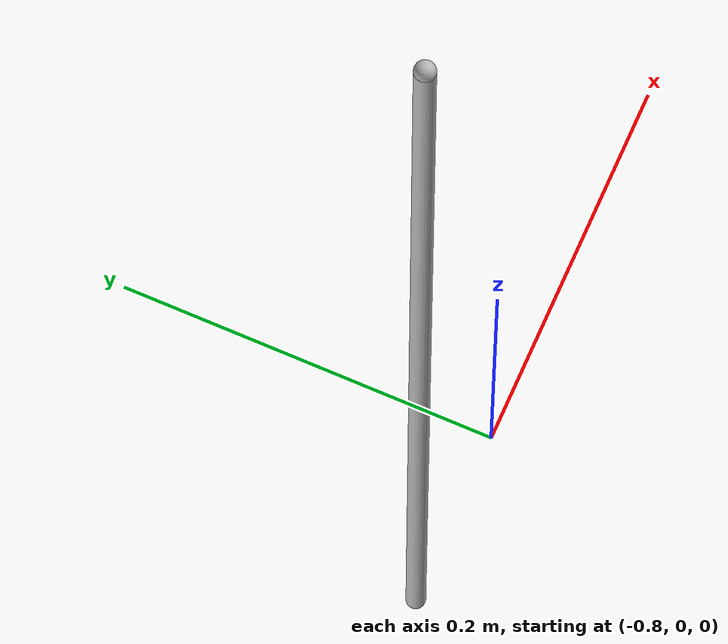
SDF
<?xml version='1.0'?>
<sdf version='1.7'>
  <model name='cable2'>
    <link name='firefly_2/aux_load_x'>
      <pose>-0.895 0 0.01 0 -0 0</pose>
      <inertial>
        <pose>0 0 0.35 0 -0 0</pose>
        <mass>0.07</mass>
        <inertia>
          <ixx>0.00449218</ixx>
          <ixy>0</ixy>
          <ixz>0</ixz>
          <iyy>0.00449218</iyy>
          <iyz>0</iyz>
          <izz>8.25e-07</izz>
        </inertia>
      </inertial>
      <self_collide>0</self_collide>
      <enable_wind>0</enable_wind>
      <kinematic>0</kinematic>
      <visual name='firefly_2/aux_load_x_visual'>
        <pose>0 0 0 0 -0 0</pose>
        <geometry>
          <sphere>
            <radius>0.005</radius>
          </sphere>
        </geometry>
        <material>
          <shader type='pixel'/>
        </material>
        <transparency>0</transparency>
        <cast_shadows>1</cast_shadows>
      </visual>
      <visual name='firefly_2/aux_load_x_fixed_joint_lump__firefly_2/cable_visual_1'>
        <pose>0 0 0.35 0 -0 0</pose>
        <geometry>
          <cylinder>
            <length>0.7</length>
            <radius>0.005</radius>
          </cylinder>
        </geometry>
        <material>
          <shader type='pixel'/>
        </material>
        <transparency>0</transparency>
        <cast_shadows>1</cast_shadows>
      </visual>
      <visual name='firefly_2/aux_load_x_fixed_joint_lump__firefly_2/aux_uav_y_visual_2'>
        <pose>0 0 0.7 0 -0 0</pose>
        <geometry>
          <sphere>
            <radius>0.005</radius>
          </sphere>
        </geometry>
        <material>
          <shader type='pixel'/>
        </material>
        <transparency>0</transparency>
        <cast_shadows>1</cast_shadows>
      </visual>
    </link>
    <link name='firefly_2/aux_load_y'>
      <pose>-0.895 0 0.01 0 -0 0</pose>
      <inertial>
        <pose>0 0 0 0 -0 0</pose>
        <mass>0.01</mass>
        <inertia>
          <ixx>1e-07</ixx>
          <ixy>0</ixy>
          <ixz>0</ixz>
          <iyy>1e-07</iyy>
          <iyz>0</iyz>
          <izz>1e-07</izz>
        </inertia>
      </inertial>
      <self_collide>0</self_collide>
      <enable_wind>0</enable_wind>
      <kinematic>0</kinematic>
      <visual name='firefly_2/aux_load_y_visual'>
        <pose>0 0 0 0 -0 0</pose>
        <geometry>
          <sphere>
            <radius>0.005</radius>
          </sphere>
        </geometry>
        <material>
          <shader type='pixel'/>
        </material>
        <transparency>0</transparency>
        <cast_shadows>1</cast_shadows>
      </visual>
    </link>
    <link name='firefly_2/aux_uav_x'>
      <pose>-0.895 0 0.71 0 -0 0</pose>
      <inertial>
        <pose>0 0 0 0 -0 0</pose>
        <mass>0.01</mass>
        <inertia>
          <ixx>1e-07</ixx>
          <ixy>0</ixy>
          <ixz>0</ixz>
          <iyy>1e-07</iyy>
          <iyz>0</iyz>
          <izz>1e-07</izz>
        </inertia>
      </inertial>
      <self_collide>0</self_collide>
      <enable_wind>0</enable_wind>
      <kinematic>0</kinematic>
      <visual name='firefly_2/aux_uav_x_visual'>
        <pose>0 0 0 0 -0 0</pose>
        <geometry>
          <sphere>
            <radius>0.005</radius>
          </sphere>
        </geometry>
        <material>
          <shader type='pixel'/>
        </material>
        <transparency>0</transparency>
        <cast_shadows>1</cast_shadows>
      </visual>
    </link>
    <link name='firefly_2/imu_link'>
      <pose>-0.895 0 0.71 0 -0 0</pose>
      <inertial>
        <pose>0 0 0 0 -0 0</pose>
        <mass>0.015</mass>
        <inertia>
          <ixx>1e-05</ixx>
          <ixy>0</ixy>
          <ixz>0</ixz>
          <iyy>1e-05</iyy>
          <iyz>0</iyz>
          <izz>1e-05</izz>
        </inertia>
      </inertial>
      <self_collide>0</self_collide>
      <enable_wind>0</enable_wind>
      <kinematic>0</kinematic>
    </link>
    <link name='firefly_2/imugt_link'>
      <pose>-0.895 0 0.71 0 -0 0</pose>
      <inertial>
        <pose>0 0 0 0 -0 0</pose>
        <mass>1e-05</mass>
        <inertia>
          <ixx>1e-05</ixx>
          <ixy>0</ixy>
          <ixz>0</ixz>
          <iyy>1e-05</iyy>
          <iyz>0</iyz>
          <izz>1e-05</izz>
        </inertia>
      </inertial>
      <self_collide>0</self_collide>
      <enable_wind>0</enable_wind>
      <kinematic>0</kinematic>
    </link>
    <link name='firefly_2/odometry_sensorgt_link'>
      <pose>-0.895 0 0.71 0 -0 0</pose>
      <inertial>
        <pose>0 0 0 0 -0 0</pose>
        <mass>1e-05</mass>
        <inertia>
          <ixx>1e-05</ixx>
          <ixy>0</ixy>
          <ixz>0</ixz>
          <iyy>1e-05</iyy>
          <iyz>0</iyz>
          <izz>1e-05</izz>
        </inertia>
      </inertial>
      <self_collide>0</self_collide>
      <enable_wind>0</enable_wind>
      <kinematic>0</kinematic>
    </link>
    <joint name='firefly_2/joint_load_x' type='revolute'>
      <parent>firefly_2/aux_load_y</parent>
      <child>firefly_2/aux_load_x</child>
      <pose>0 0 0 0 -0 0</pose>
      <axis>
        <xyz>1 0 0</xyz>
        <limit>
          <lower>-1e+16</lower>
          <upper>1e+16</upper>
          <effort>-1</effort>
          <velocity>-1</velocity>
        </limit>
        <dynamics>
          <spring_reference>0</spring_reference>
          <spring_stiffness>0</spring_stiffness>
          <damping>0</damping>
          <friction>0</friction>
        </dynamics>
      </axis>
      <physics>
        <ode>
          <limit>
            <cfm>0</cfm>
            <erp>0.2</erp>
          </limit>
          <suspension>
            <cfm>0</cfm>
            <erp>0.2</erp>
          </suspension>
        </ode>
      </physics>
    </joint>
    <joint name='firefly_2/joint_uav_x' type='revolute'>
      <parent>firefly_2/aux_load_x</parent>
      <child>firefly_2/aux_uav_x</child>
      <pose>0 0 0 0 -0 0</pose>
      <axis>
        <xyz>1 0 0</xyz>
        <limit>
          <lower>-1e+16</lower>
          <upper>1e+16</upper>
          <effort>-1</effort>
          <velocity>-1</velocity>
        </limit>
        <dynamics>
          <spring_reference>0</spring_reference>
          <spring_stiffness>0</spring_stiffness>
          <damping>0</damping>
          <friction>0</friction>
        </dynamics>
      </axis>
      <physics>
        <ode>
          <limit>
            <cfm>0</cfm>
            <erp>0.2</erp>
          </limit>
          <suspension>
            <cfm>0</cfm>
            <erp>0.2</erp>
          </suspension>
        </ode>
      </physics>
    </joint>
    <static>0</static>
    <allow_auto_disable>1</allow_auto_disable>
    <plugin name='controller_interface' filename='librotors_gazebo_controller_interface.so'>
      <robotNamespace>firefly_2</robotNamespace>
      <commandAttitudeThrustSubTopic>command/attitude</commandAttitudeThrustSubTopic>
      <commandRateThrustSubTopic>command/rate</commandRateThrustSubTopic>
      <commandMotorSpeedSubTopic>command/motor_speed</commandMotorSpeedSubTopic>
      <imuSubTopic>imu</imuSubTopic>
      <motorSpeedCommandPubTopic>gazebo/command/motor_speed</motorSpeedCommandPubTopic>
    </plugin>
    <plugin name='firefly_2_back_left_motor_model' filename='librotors_gazebo_motor_model.so'>
      <robotNamespace>firefly_2</robotNamespace>
      <jointName>firefly_2/rotor_2_joint</jointName>
      <linkName>firefly_2/rotor_2</linkName>
      <turningDirection>ccw</turningDirection>
      <timeConstantUp>0.0125</timeConstantUp>
      <timeConstantDown>0.025</timeConstantDown>
      <maxRotVelocity>838</maxRotVelocity>
      <motorConstant>8.54858e-06</motorConstant>
      <momentConstant>0.016</momentConstant>
      <commandSubTopic>gazebo/command/motor_speed</commandSubTopic>
      <motorNumber>2</motorNumber>
      <rotorDragCoefficient>8.06428e-05</rotorDragCoefficient>
      <rollingMomentCoefficient>1e-06</rollingMomentCoefficient>
      <motorSpeedPubTopic>motor_speed/2</motorSpeedPubTopic>
      <rotorVelocitySlowdownSim>10</rotorVelocitySlowdownSim>
    </plugin>
    <plugin name='firefly_2_back_right_motor_model' filename='librotors_gazebo_motor_model.so'>
      <robotNamespace>firefly_2</robotNamespace>
      <jointName>firefly_2/rotor_3_joint</jointName>
      <linkName>firefly_2/rotor_3</linkName>
      <turningDirection>cw</turningDirection>
      <timeConstantUp>0.0125</timeConstantUp>
      <timeConstantDown>0.025</timeConstantDown>
      <maxRotVelocity>838</maxRotVelocity>
      <motorConstant>8.54858e-06</motorConstant>
      <momentConstant>0.016</momentConstant>
      <commandSubTopic>gazebo/command/motor_speed</commandSubTopic>
      <motorNumber>3</motorNumber>
      <rotorDragCoefficient>8.06428e-05</rotorDragCoefficient>
      <rollingMomentCoefficient>1e-06</rollingMomentCoefficient>
      <motorSpeedPubTopic>motor_speed/3</motorSpeedPubTopic>
      <rotorVelocitySlowdownSim>10</rotorVelocitySlowdownSim>
    </plugin>
    <plugin name='firefly_2_front_left_motor_model' filename='librotors_gazebo_motor_model.so'>
      <robotNamespace>firefly_2</robotNamespace>
      <jointName>firefly_2/rotor_0_joint</jointName>
      <linkName>firefly_2/rotor_0</linkName>
      <turningDirection>ccw</turningDirection>
      <timeConstantUp>0.0125</timeConstantUp>
      <timeConstantDown>0.025</timeConstantDown>
      <maxRotVelocity>838</maxRotVelocity>
      <motorConstant>8.54858e-06</motorConstant>
      <momentConstant>0.016</momentConstant>
      <commandSubTopic>gazebo/command/motor_speed</commandSubTopic>
      <motorNumber>0</motorNumber>
      <rotorDragCoefficient>8.06428e-05</rotorDragCoefficient>
      <rollingMomentCoefficient>1e-06</rollingMomentCoefficient>
      <motorSpeedPubTopic>motor_speed/0</motorSpeedPubTopic>
      <rotorVelocitySlowdownSim>10</rotorVelocitySlowdownSim>
    </plugin>
    <plugin name='firefly_2_front_right_motor_model' filename='librotors_gazebo_motor_model.so'>
      <robotNamespace>firefly_2</robotNamespace>
      <jointName>firefly_2/rotor_5_joint</jointName>
      <linkName>firefly_2/rotor_5</linkName>
      <turningDirection>cw</turningDirection>
      <timeConstantUp>0.0125</timeConstantUp>
      <timeConstantDown>0.025</timeConstantDown>
      <maxRotVelocity>838</maxRotVelocity>
      <motorConstant>8.54858e-06</motorConstant>
      <momentConstant>0.016</momentConstant>
      <commandSubTopic>gazebo/command/motor_speed</commandSubTopic>
      <motorNumber>5</motorNumber>
      <rotorDragCoefficient>8.06428e-05</rotorDragCoefficient>
      <rollingMomentCoefficient>1e-06</rollingMomentCoefficient>
      <motorSpeedPubTopic>motor_speed/5</motorSpeedPubTopic>
      <rotorVelocitySlowdownSim>10</rotorVelocitySlowdownSim>
    </plugin>
    <plugin name='firefly_2_left_motor_model' filename='librotors_gazebo_motor_model.so'>
      <robotNamespace>firefly_2</robotNamespace>
      <jointName>firefly_2/rotor_1_joint</jointName>
      <linkName>firefly_2/rotor_1</linkName>
      <turningDirection>cw</turningDirection>
      <timeConstantUp>0.0125</timeConstantUp>
      <timeConstantDown>0.025</timeConstantDown>
      <maxRotVelocity>838</maxRotVelocity>
      <motorConstant>8.54858e-06</motorConstant>
      <momentConstant>0.016</momentConstant>
      <commandSubTopic>gazebo/command/motor_speed</commandSubTopic>
      <motorNumber>1</motorNumber>
      <rotorDragCoefficient>8.06428e-05</rotorDragCoefficient>
      <rollingMomentCoefficient>1e-06</rollingMomentCoefficient>
      <motorSpeedPubTopic>motor_speed/1</motorSpeedPubTopic>
      <rotorVelocitySlowdownSim>10</rotorVelocitySlowdownSim>
    </plugin>
    <plugin name='firefly_2_right_motor_model' filename='librotors_gazebo_motor_model.so'>
      <robotNamespace>firefly_2</robotNamespace>
      <jointName>firefly_2/rotor_4_joint</jointName>
      <linkName>firefly_2/rotor_4</linkName>
      <turningDirection>ccw</turningDirection>
      <timeConstantUp>0.0125</timeConstantUp>
      <timeConstantDown>0.025</timeConstantDown>
      <maxRotVelocity>838</maxRotVelocity>
      <motorConstant>8.54858e-06</motorConstant>
      <momentConstant>0.016</momentConstant>
      <commandSubTopic>gazebo/command/motor_speed</commandSubTopic>
      <motorNumber>4</motorNumber>
      <rotorDragCoefficient>8.06428e-05</rotorDragCoefficient>
      <rollingMomentCoefficient>1e-06</rollingMomentCoefficient>
      <motorSpeedPubTopic>motor_speed/4</motorSpeedPubTopic>
      <rotorVelocitySlowdownSim>10</rotorVelocitySlowdownSim>
    </plugin>
    <plugin name='firefly_back_left_motor_model' filename='librotors_gazebo_motor_model.so'>
      <robotNamespace>firefly</robotNamespace>
      <jointName>firefly/rotor_2_joint</jointName>
      <linkName>firefly/rotor_2</linkName>
      <turningDirection>ccw</turningDirection>
      <timeConstantUp>0.0125</timeConstantUp>
      <timeConstantDown>0.025</timeConstantDown>
      <maxRotVelocity>838</maxRotVelocity>
      <motorConstant>8.54858e-06</motorConstant>
      <momentConstant>0.016</momentConstant>
      <commandSubTopic>gazebo/command/motor_speed</commandSubTopic>
      <motorNumber>2</motorNumber>
      <rotorDragCoefficient>8.06428e-05</rotorDragCoefficient>
      <rollingMomentCoefficient>1e-06</rollingMomentCoefficient>
      <motorSpeedPubTopic>motor_speed/2</motorSpeedPubTopic>
      <rotorVelocitySlowdownSim>10</rotorVelocitySlowdownSim>
    </plugin>
    <plugin name='firefly_back_right_motor_model' filename='librotors_gazebo_motor_model.so'>
      <robotNamespace>firefly</robotNamespace>
      <jointName>firefly/rotor_3_joint</jointName>
      <linkName>firefly/rotor_3</linkName>
      <turningDirection>cw</turningDirection>
      <timeConstantUp>0.0125</timeConstantUp>
      <timeConstantDown>0.025</timeConstantDown>
      <maxRotVelocity>838</maxRotVelocity>
      <motorConstant>8.54858e-06</motorConstant>
      <momentConstant>0.016</momentConstant>
      <commandSubTopic>gazebo/command/motor_speed</commandSubTopic>
      <motorNumber>3</motorNumber>
      <rotorDragCoefficient>8.06428e-05</rotorDragCoefficient>
      <rollingMomentCoefficient>1e-06</rollingMomentCoefficient>
      <motorSpeedPubTopic>motor_speed/3</motorSpeedPubTopic>
      <rotorVelocitySlowdownSim>10</rotorVelocitySlowdownSim>
    </plugin>
    <plugin name='firefly_front_left_motor_model' filename='librotors_gazebo_motor_model.so'>
      <robotNamespace>firefly</robotNamespace>
      <jointName>firefly/rotor_0_joint</jointName>
      <linkName>firefly/rotor_0</linkName>
      <turningDirection>ccw</turningDirection>
      <timeConstantUp>0.0125</timeConstantUp>
      <timeConstantDown>0.025</timeConstantDown>
      <maxRotVelocity>838</maxRotVelocity>
      <motorConstant>8.54858e-06</motorConstant>
      <momentConstant>0.016</momentConstant>
      <commandSubTopic>gazebo/command/motor_speed</commandSubTopic>
      <motorNumber>0</motorNumber>
      <rotorDragCoefficient>8.06428e-05</rotorDragCoefficient>
      <rollingMomentCoefficient>1e-06</rollingMomentCoefficient>
      <motorSpeedPubTopic>motor_speed/0</motorSpeedPubTopic>
      <rotorVelocitySlowdownSim>10</rotorVelocitySlowdownSim>
    </plugin>
    <plugin name='firefly_front_right_motor_model' filename='librotors_gazebo_motor_model.so'>
      <robotNamespace>firefly</robotNamespace>
      <jointName>firefly/rotor_5_joint</jointName>
      <linkName>firefly/rotor_5</linkName>
      <turningDirection>cw</turningDirection>
      <timeConstantUp>0.0125</timeConstantUp>
      <timeConstantDown>0.025</timeConstantDown>
      <maxRotVelocity>838</maxRotVelocity>
      <motorConstant>8.54858e-06</motorConstant>
      <momentConstant>0.016</momentConstant>
      <commandSubTopic>gazebo/command/motor_speed</commandSubTopic>
      <motorNumber>5</motorNumber>
      <rotorDragCoefficient>8.06428e-05</rotorDragCoefficient>
      <rollingMomentCoefficient>1e-06</rollingMomentCoefficient>
      <motorSpeedPubTopic>motor_speed/5</motorSpeedPubTopic>
      <rotorVelocitySlowdownSim>10</rotorVelocitySlowdownSim>
    </plugin>
    <plugin name='firefly_left_motor_model' filename='librotors_gazebo_motor_model.so'>
      <robotNamespace>firefly</robotNamespace>
      <jointName>firefly/rotor_1_joint</jointName>
      <linkName>firefly/rotor_1</linkName>
      <turningDirection>cw</turningDirection>
      <timeConstantUp>0.0125</timeConstantUp>
      <timeConstantDown>0.025</timeConstantDown>
      <maxRotVelocity>838</maxRotVelocity>
      <motorConstant>8.54858e-06</motorConstant>
      <momentConstant>0.016</momentConstant>
      <commandSubTopic>gazebo/command/motor_speed</commandSubTopic>
      <motorNumber>1</motorNumber>
      <rotorDragCoefficient>8.06428e-05</rotorDragCoefficient>
      <rollingMomentCoefficient>1e-06</rollingMomentCoefficient>
      <motorSpeedPubTopic>motor_speed/1</motorSpeedPubTopic>
      <rotorVelocitySlowdownSim>10</rotorVelocitySlowdownSim>
    </plugin>
    <plugin name='firefly_right_motor_model' filename='librotors_gazebo_motor_model.so'>
      <robotNamespace>firefly</robotNamespace>
      <jointName>firefly/rotor_4_joint</jointName>
      <linkName>firefly/rotor_4</linkName>
      <turningDirection>ccw</turningDirection>
      <timeConstantUp>0.0125</timeConstantUp>
      <timeConstantDown>0.025</timeConstantDown>
      <maxRotVelocity>838</maxRotVelocity>
      <motorConstant>8.54858e-06</motorConstant>
      <momentConstant>0.016</momentConstant>
      <commandSubTopic>gazebo/command/motor_speed</commandSubTopic>
      <motorNumber>4</motorNumber>
      <rotorDragCoefficient>8.06428e-05</rotorDragCoefficient>
      <rollingMomentCoefficient>1e-06</rollingMomentCoefficient>
      <motorSpeedPubTopic>motor_speed/4</motorSpeedPubTopic>
      <rotorVelocitySlowdownSim>10</rotorVelocitySlowdownSim>
    </plugin>
    <plugin name='multirotor_base_plugin' filename='librotors_gazebo_multirotor_base_plugin.so'>
      <robotNamespace>firefly_2</robotNamespace>
      <linkName>firefly_2/base_link</linkName>
      <rotorVelocitySlowdownSim>10</rotorVelocitySlowdownSim>
    </plugin>
    <plugin name='odometry_sensor_bar' filename='librotors_gazebo_odometry_plugin.so'>
      <linkName>bar/odometry_sensor_bar_link</linkName>
      <robotNamespace>bar</robotNamespace>
      <poseTopic>ground_truth/pose</poseTopic>
      <poseWithCovarianceTopic>ground_truth/pose_with_covariance</poseWithCovarianceTopic>
      <positionTopic>ground_truth/position</positionTopic>
      <transformTopic>ground_truth/transform</transformTopic>
      <odometryTopic>ground_truth/odometry</odometryTopic>
      <parentFrameId>world</parentFrameId>
      <childFrameId>bar</childFrameId>
      <measurementDivisor>1</measurementDivisor>
      <measurementDelay>0</measurementDelay>
      <unknownDelay>0.0</unknownDelay>
      <noiseNormalPosition>0 0 0</noiseNormalPosition>
      <noiseNormalQuaternion>0 0 0</noiseNormalQuaternion>
      <noiseNormalLinearVelocity>0 0 0</noiseNormalLinearVelocity>
      <noiseNormalAngularVelocity>0 0 0</noiseNormalAngularVelocity>
      <noiseUniformPosition>0 0 0</noiseUniformPosition>
      <noiseUniformQuaternion>0 0 0</noiseUniformQuaternion>
      <noiseUniformLinearVelocity>0 0 0</noiseUniformLinearVelocity>
      <noiseUniformAngularVelocity>0 0 0</noiseUniformAngularVelocity>
    </plugin>
    <plugin name='odometry_sensorgt' filename='librotors_gazebo_odometry_plugin.so'>
      <linkName>firefly_2/odometry_sensorgt_link</linkName>
      <robotNamespace>firefly_2</robotNamespace>
      <poseTopic>ground_truth/pose</poseTopic>
      <poseWithCovarianceTopic>ground_truth/pose_with_covariance</poseWithCovarianceTopic>
      <positionTopic>ground_truth/position</positionTopic>
      <transformTopic>ground_truth/transform</transformTopic>
      <odometryTopic>ground_truth/odometry</odometryTopic>
      <parentFrameId>world</parentFrameId>
      <childFrameId>firefly_2/base_link</childFrameId>
      <measurementDivisor>1</measurementDivisor>
      <measurementDelay>0</measurementDelay>
      <unknownDelay>0.0</unknownDelay>
      <noiseNormalPosition>0 0 0</noiseNormalPosition>
      <noiseNormalQuaternion>0 0 0</noiseNormalQuaternion>
      <noiseNormalLinearVelocity>0 0 0</noiseNormalLinearVelocity>
      <noiseNormalAngularVelocity>0 0 0</noiseNormalAngularVelocity>
      <noiseUniformPosition>0 0 0</noiseUniformPosition>
      <noiseUniformQuaternion>0 0 0</noiseUniformQuaternion>
      <noiseUniformLinearVelocity>0 0 0</noiseUniformLinearVelocity>
      <noiseUniformAngularVelocity>0 0 0</noiseUniformAngularVelocity>
    </plugin>
    <plugin name='rotors_gazebo_imu_plugin' filename='librotors_gazebo_imu_plugin.so'>
      <robotNamespace>firefly_2</robotNamespace>
      <linkName>firefly_2/imu_link</linkName>
      <imuTopic>imu</imuTopic>
      <gyroscopeNoiseDensity>0.0003394</gyroscopeNoiseDensity>
      <gyroscopeRandomWalk>3.8785e-05</gyroscopeRandomWalk>
      <gyroscopeBiasCorrelationTime>1000.0</gyroscopeBiasCorrelationTime>
      <gyroscopeTurnOnBiasSigma>0.0087</gyroscopeTurnOnBiasSigma>
      <accelerometerNoiseDensity>0.004</accelerometerNoiseDensity>
      <accelerometerRandomWalk>0.006</accelerometerRandomWalk>
      <accelerometerBiasCorrelationTime>300.0</accelerometerBiasCorrelationTime>
      <accelerometerTurnOnBiasSigma>0.196</accelerometerTurnOnBiasSigma>
    </plugin>
    <plugin name='rotors_gazebo_imugt_plugin' filename='librotors_gazebo_imu_plugin.so'>
      <robotNamespace>firefly_2</robotNamespace>
      <linkName>firefly_2/imugt_link</linkName>
      <imuTopic>ground_truth/imu</imuTopic>
      <gyroscopeNoiseDensity>0.0</gyroscopeNoiseDensity>
      <gyroscopeRandomWalk>0.0</gyroscopeRandomWalk>
      <gyroscopeBiasCorrelationTime>1000.0</gyroscopeBiasCorrelationTime>
      <gyroscopeTurnOnBiasSigma>0.0</gyroscopeTurnOnBiasSigma>
      <accelerometerNoiseDensity>0.0</accelerometerNoiseDensity>
      <accelerometerRandomWalk>0.0</accelerometerRandomWalk>
      <accelerometerBiasCorrelationTime>300.0</accelerometerBiasCorrelationTime>
      <accelerometerTurnOnBiasSigma>0.0</accelerometerTurnOnBiasSigma>
    </plugin>
  </model>
</sdf>
